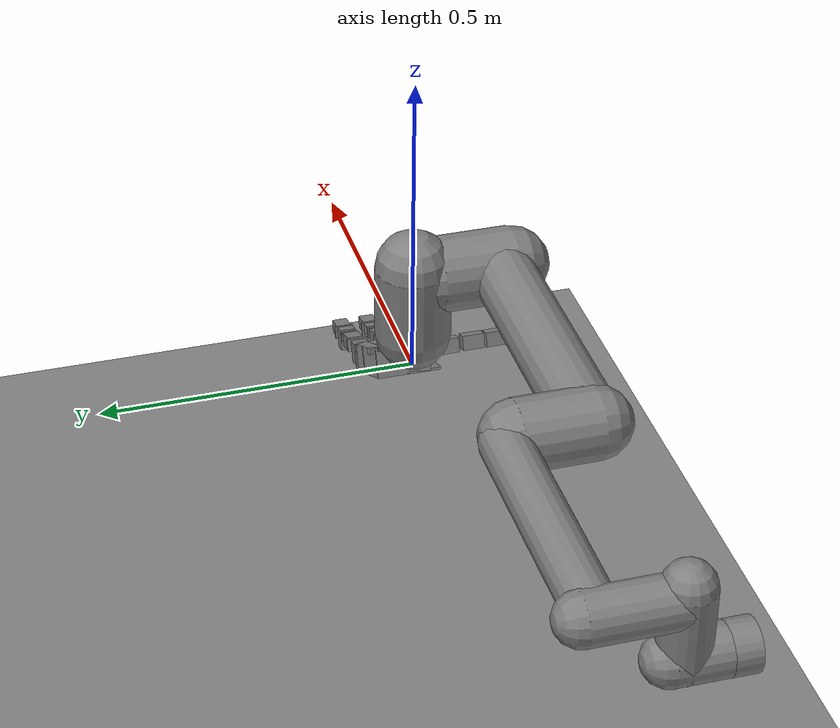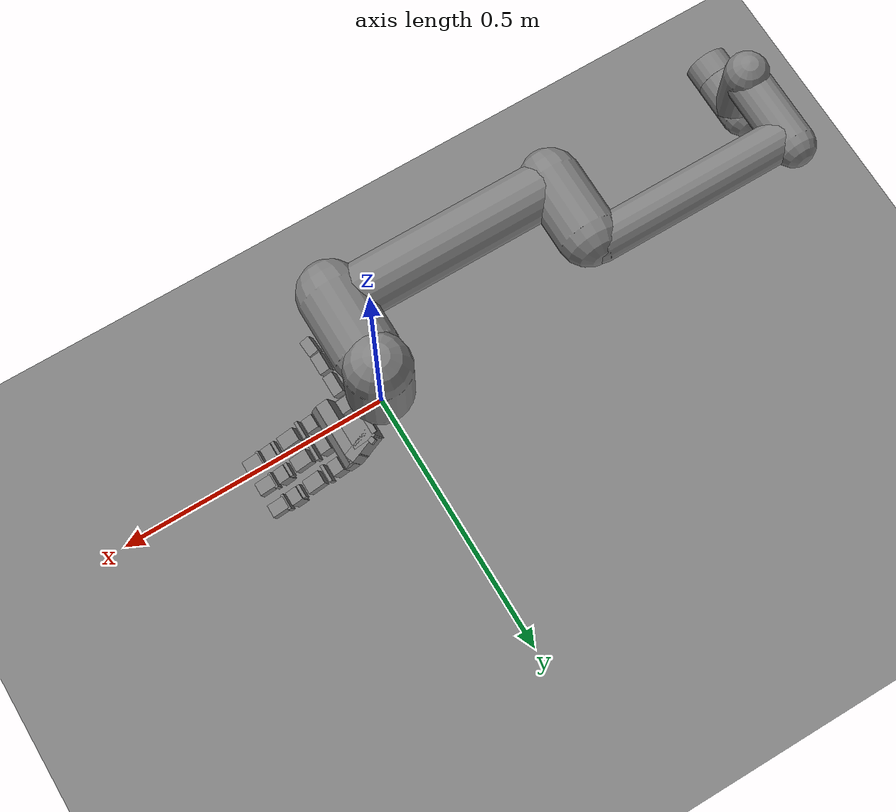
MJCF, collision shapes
<mujoco model="ur5e_leap_menagerie_scene">
  <!-- Include local UR5e wrapper that sets meshdir absolute to menagerie assets -->
  <include file="ur5e_local.xml"/>
  <!-- Reset meshdir so subsequent includes (LEAP) resolve their own relative paths correctly -->
  <compiler meshdir=""/>
  <include file="leap_rh_mjx.xml"/>

  <!-- Unify simulation options for the combined scene to improve stability -->
  <option timestep="0.004" integrator="implicitfast" iterations="10" ls_iterations="20"/>

  <visual>
    <global azimuth="120" elevation="-20"/>
  </visual>

  <worldbody>
    <!-- Optional: simple floor (non-colliding) and a camera -->
    <geom name="floor" type="plane" pos="0 0 -0.5" size="0 0 0.01" contype="0" conaffinity="0"/>
    <camera name="cam" pos="1.5 0.0 0.9" xyaxes="0.0 -1.0 0.0 0.4 0.0 0.9"/>
  </worldbody>

  <!-- Rigidly weld LEAP Hand base to UR5e wrist_3_link.
       The weld preserves the initial relative transform at load time. -->
  <equality>
    <weld body1="wrist_3_link" body2="leap_mount" solref="0.05 1" solimp="0.95 0.99 0.001" relpose="0 0.1 0 -1 1 0 0"/>
  </equality>
</mujoco>

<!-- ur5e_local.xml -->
<mujoco model="ur5e">
  <compiler angle="radian" autolimits="true"/>

  <option integrator="implicitfast"/>

  <default>
    <default class="ur5e">
      <material specular="0.5" shininess="0.25"/>
      <joint axis="0 1 0" range="-6.28319 6.28319" armature="0.1"/>
      <general gaintype="fixed" biastype="affine" ctrlrange="-6.2831 6.2831" gainprm="2000" biasprm="0 -2000 -400"
        forcerange="-150 150"/>
      <default class="size3">
        <default class="size3_limited">
          <joint range="-3.1415 3.1415"/>
          <general ctrlrange="-3.1415 3.1415"/>
        </default>
      </default>
      <default class="size1">
        <general gainprm="500" biasprm="0 -500 -100" forcerange="-28 28"/>
      </default>
      <default class="visual">
        <geom type="mesh" contype="0" conaffinity="0" group="2"/>
      </default>
      <default class="collision">
        <geom type="capsule" group="3"/>
        <default class="eef_collision">
          <geom type="cylinder"/>
        </default>
      </default>
      <site size="0.001" rgba="0.5 0.5 0.5 0.3" group="4"/>
    </default>
  </default>

  <asset>
    <material class="ur5e" name="black" rgba="0.033 0.033 0.033 1"/>
    <material class="ur5e" name="jointgray" rgba="0.278 0.278 0.278 1"/>
    <material class="ur5e" name="linkgray" rgba="0.82 0.82 0.82 1"/>
    <material class="ur5e" name="urblue" rgba="0.49 0.678 0.8 1"/>

    <mesh file="../../../../../mujoco_menagerie/universal_robots_ur5e/assets/base_0.obj"/>
    <mesh file="../../../../../mujoco_menagerie/universal_robots_ur5e/assets/base_1.obj"/>
    <mesh file="../../../../../mujoco_menagerie/universal_robots_ur5e/assets/shoulder_0.obj"/>
    <mesh file="../../../../../mujoco_menagerie/universal_robots_ur5e/assets/shoulder_1.obj"/>
    <mesh file="../../../../../mujoco_menagerie/universal_robots_ur5e/assets/shoulder_2.obj"/>
    <mesh file="../../../../../mujoco_menagerie/universal_robots_ur5e/assets/upperarm_0.obj"/>
    <mesh file="../../../../../mujoco_menagerie/universal_robots_ur5e/assets/upperarm_1.obj"/>
    <mesh file="../../../../../mujoco_menagerie/universal_robots_ur5e/assets/upperarm_2.obj"/>
    <mesh file="../../../../../mujoco_menagerie/universal_robots_ur5e/assets/upperarm_3.obj"/>
    <mesh file="../../../../../mujoco_menagerie/universal_robots_ur5e/assets/forearm_0.obj"/>
    <mesh file="../../../../../mujoco_menagerie/universal_robots_ur5e/assets/forearm_1.obj"/>
    <mesh file="../../../../../mujoco_menagerie/universal_robots_ur5e/assets/forearm_2.obj"/>
    <mesh file="../../../../../mujoco_menagerie/universal_robots_ur5e/assets/forearm_3.obj"/>
    <mesh file="../../../../../mujoco_menagerie/universal_robots_ur5e/assets/wrist1_0.obj"/>
    <mesh file="../../../../../mujoco_menagerie/universal_robots_ur5e/assets/wrist1_1.obj"/>
    <mesh file="../../../../../mujoco_menagerie/universal_robots_ur5e/assets/wrist1_2.obj"/>
    <mesh file="../../../../../mujoco_menagerie/universal_robots_ur5e/assets/wrist2_0.obj"/>
    <mesh file="../../../../../mujoco_menagerie/universal_robots_ur5e/assets/wrist2_1.obj"/>
    <mesh file="../../../../../mujoco_menagerie/universal_robots_ur5e/assets/wrist2_2.obj"/>
    <mesh file="../../../../../mujoco_menagerie/universal_robots_ur5e/assets/wrist3.obj"/>
  </asset>

  <worldbody>
    <light name="spotlight" mode="targetbodycom" target="wrist_2_link" pos="0 -1 2"/>
    <body name="base" quat="0 0 0 -1" childclass="ur5e">
      <inertial mass="4.0" pos="0 0 0" diaginertia="0.00443333156 0.00443333156 0.0072"/>
      <geom mesh="base_0" material="black" class="visual"/>
      <geom mesh="base_1" material="jointgray" class="visual"/>
      <body name="shoulder_link" pos="0 0 0.163">
        <inertial mass="3.7" pos="0 0 0" diaginertia="0.0102675 0.0102675 0.00666"/>
        <joint name="shoulder_pan_joint" class="size3" axis="0 0 1"/>
        <geom mesh="shoulder_0" material="urblue" class="visual"/>
        <geom mesh="shoulder_1" material="black" class="visual"/>
        <geom mesh="shoulder_2" material="jointgray" class="visual"/>
        <geom class="collision" size="0.06 0.06" pos="0 0 -0.04"/>
        <body name="upper_arm_link" pos="0 0.138 0" quat="1 0 1 0">
          <inertial mass="8.393" pos="0 0 0.2125" diaginertia="0.133886 0.133886 0.0151074"/>
          <joint name="shoulder_lift_joint" class="size3"/>
          <geom mesh="upperarm_0" material="linkgray" class="visual"/>
          <geom mesh="upperarm_1" material="black" class="visual"/>
          <geom mesh="upperarm_2" material="jointgray" class="visual"/>
          <geom mesh="upperarm_3" material="urblue" class="visual"/>
          <geom class="collision" pos="0 -0.04 0" quat="1 1 0 0" size="0.06 0.06"/>
          <geom class="collision" size="0.05 0.2" pos="0 0 0.2"/>
          <body name="forearm_link" pos="0 -0.131 0.425">
            <inertial mass="2.275" pos="0 0 0.196" diaginertia="0.0311796 0.0311796 0.004095"/>
            <joint name="elbow_joint" class="size3_limited"/>
            <geom mesh="forearm_0" material="urblue" class="visual"/>
            <geom mesh="forearm_1" material="linkgray" class="visual"/>
            <geom mesh="forearm_2" material="black" class="visual"/>
            <geom mesh="forearm_3" material="jointgray" class="visual"/>
            <geom class="collision" pos="0 0.08 0" quat="1 1 0 0" size="0.055 0.06"/>
            <geom class="collision" size="0.038 0.19" pos="0 0 0.2"/>
            <body name="wrist_1_link" pos="0 0 0.392" quat="1 0 1 0">
              <inertial mass="1.219" pos="0 0.127 0" diaginertia="0.0025599 0.0025599 0.0021942"/>
              <joint name="wrist_1_joint" class="size1"/>
              <geom mesh="wrist1_0" material="black" class="visual"/>
              <geom mesh="wrist1_1" material="urblue" class="visual"/>
              <geom mesh="wrist1_2" material="jointgray" class="visual"/>
              <geom class="collision" pos="0 0.05 0" quat="1 1 0 0" size="0.04 0.07"/>
              <body name="wrist_2_link" pos="0 0.127 0">
                <inertial mass="1.219" pos="0 0 0.1" diaginertia="0.0025599 0.0025599 0.0021942"/>
                <joint name="wrist_2_joint" axis="0 0 1" class="size1"/>
                <geom mesh="wrist2_0" material="black" class="visual"/>
                <geom mesh="wrist2_1" material="urblue" class="visual"/>
                <geom mesh="wrist2_2" material="jointgray" class="visual"/>
                <geom class="collision" size="0.04 0.06" pos="0 0 0.04"/>
                <geom class="collision" pos="0 0.02 0.1" quat="1 1 0 0" size="0.04 0.04"/>
                <body name="wrist_3_link" pos="0 0 0.1">
                  <inertial mass="0.1889" pos="0 0.0771683 0" quat="1 0 0 1"
                    diaginertia="0.000132134 9.90863e-05 9.90863e-05"/>
                  <joint name="wrist_3_joint" class="size1"/>
                  <geom material="linkgray" mesh="wrist3" class="visual"/>
                  <geom class="eef_collision" pos="0 0.08 0" quat="1 1 0 0" size="0.04 0.02"/>
                  <site name="attachment_site" pos="0 0.1 0" quat="-1 1 0 0"/>
                </body>
              </body>
            </body>
          </body>
        </body>
      </body>
    </body>
  </worldbody>

  <actuator>
    <!-- Replace high-gain general actuators with moderate-gain position controllers to reduce vibration -->
    <position name="shoulder_pan" joint="shoulder_pan_joint" kp="80" ctrlrange="-3.1415 3.1415" forcerange="-150 150"/>
    <position name="shoulder_lift" joint="shoulder_lift_joint" kp="80" ctrlrange="-3.1415 3.1415" forcerange="-150 150"/>
    <position name="elbow" joint="elbow_joint" kp="60" ctrlrange="-3.1415 3.1415" forcerange="-120 120"/>
    <position name="wrist_1" joint="wrist_1_joint" kp="40" ctrlrange="-3.1415 3.1415" forcerange="-60 60"/>
    <position name="wrist_2" joint="wrist_2_joint" kp="40" ctrlrange="-3.1415 3.1415" forcerange="-60 60"/>
    <position name="wrist_3" joint="wrist_3_joint" kp="30" ctrlrange="-3.1415 3.1415" forcerange="-40 40"/>
  </actuator>
</mujoco>

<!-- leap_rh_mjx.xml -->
<mujoco model="leap_rh">
  <compiler angle="radian" autolimits="true" meshdir=""/>

  <option timestep="0.01" integrator="Euler" iterations="5" ls_iterations="8">
    <flag eulerdamp="disable"/>
  </option>

  <custom>
    <numeric data="30" name="max_contact_points"/>
    <numeric data="12" name="max_geom_pairs"/>
  </custom>

  <asset>
    <material name="leap_black" rgba="0.2 0.2 0.2 1"/>
    <material name="leap_gray" rgba="0.5 0.5 0.5 1"/>
    <mesh name="leap_mount" file="../../../../../mujoco_playground/_src/manipulation/my_leap_hand/xmls/meshes/leap_mount.obj"/>

    <mesh name="palm" file="../../../../../mujoco_menagerie/leap_hand/assets/palm_right.obj"/>
    <mesh name="base" file="../../../../../mujoco_menagerie/leap_hand/assets/base.obj"/>
    <mesh name="proximal" file="../../../../../mujoco_menagerie/leap_hand/assets/proximal.obj"/>
    <mesh name="medial" file="../../../../../mujoco_menagerie/leap_hand/assets/medial.obj"/>
    <mesh name="distal" file="../../../../../mujoco_menagerie/leap_hand/assets/distal.obj"/>
    <mesh name="tip" file="../../../../../mujoco_menagerie/leap_hand/assets/tip.obj"/>
    <mesh name="thumb_base" file="../../../../../mujoco_menagerie/leap_hand/assets/thumb_base.obj"/>
    <mesh name="thumb_proximal" file="../../../../../mujoco_menagerie/leap_hand/assets/thumb_proximal.obj"/>
    <mesh name="thumb_distal" file="../../../../../mujoco_menagerie/leap_hand/assets/thumb_distal.obj"/>
    <mesh name="thumb_tip" file="../../../../../mujoco_menagerie/leap_hand/assets/thumb_tip.obj"/>
  </asset>

  <default>
    <default class="leap_rh">
      <geom group="3" friction="0.2" solref="0.02 1.5" solimp="0.9 0.99 0.001"/>
      <default class="leap_visual">
        <geom group="2" type="mesh" contype="0" conaffinity="0" density="0" material="leap_black"/>
      </default>
      <default class="tip">
        <geom size="0.01 0.012 0.016" pos="-0.0012969 -0.0335524 0.0145207" quat="0.703552 0.709596 -0.0292107 -0.0252203" type="box" friction="0.7 0.05 0.0002" rgba=".5 .5 .5 .3"/>
      </default>
      <default class="thumb_tip">
        <geom size="0.01 0.012 0.016" pos="-0.00127744 -0.0455619 -0.0144774" quat="0.708101 0.705072 -0.0294902 -0.024426" type="box" friction="0.7 0.05 0.0002" rgba=".5 .5 .5 .3"/>
      </default>

      <position kp="3.0" inheritrange="1"/>
      <!-- armature = rotor inertia * gear ratio^2 = 1.7 * 1e-8 * 288*288 = 0.00149376 -->
      <!-- max torque = 0.2196 = 600/1000*0.366 -->
      <!-- frictionloss = rough guess, small ish value -->
      <joint axis="0 0 -1" damping="0.2" armature="0.00149376" actuatorfrcrange="-0.2196 0.2196" frictionloss="0.02"/>

      <default class="mcp">
        <joint range="-0.314 2.23"/>
      </default>
      <default class="rot">
        <joint range="-1.047 1.047"/>
      </default>
      <default class="pip">
        <joint range="-0.506 1.885"/>
      </default>
      <default class="dip">
        <joint range="-0.366 2.042"/>
      </default>
      <default class="thumb_cmc">
        <joint range="-0.349 2.094"/>
      </default>
      <default class="thumb_axl">
        <joint range="-0.349 2.094"/>
      </default>
      <default class="thumb_mcp">
        <joint range="-0.47 2.443"/>
      </default>
      <default class="thumb_ipl">
        <joint range="-1.34 1.88"/>
      </default>

    </default>
  </default>

  <contact>
    <!-- filter the palm from all other finger bodies except the tips -->
    <exclude body1="palm" body2="if_bs"/>
    <exclude body1="palm" body2="mf_bs"/>
    <exclude body1="palm" body2="rf_bs"/>
    <exclude body1="palm" body2="th_mp"/>

    <exclude body1="palm" body2="if_px"/>
    <exclude body1="palm" body2="mf_px"/>
    <exclude body1="palm" body2="rf_px"/>
    <exclude body1="palm" body2="th_bs"/>

    <exclude body1="palm" body2="if_md"/>
    <exclude body1="palm" body2="mf_md"/>
    <exclude body1="palm" body2="rf_md"/>
    <exclude body1="palm" body2="th_px"/>

    <!-- filter the mount from all finger bodies except the tips -->
    <exclude body1="leap_mount" body2="if_bs"/>
    <exclude body1="leap_mount" body2="mf_bs"/>
    <exclude body1="leap_mount" body2="rf_bs"/>
    <exclude body1="leap_mount" body2="th_mp"/>

    <exclude body1="leap_mount" body2="if_px"/>
    <exclude body1="leap_mount" body2="mf_px"/>
    <exclude body1="leap_mount" body2="rf_px"/>
    <exclude body1="leap_mount" body2="th_bs"/>

    <exclude body1="leap_mount" body2="if_md"/>
    <exclude body1="leap_mount" body2="mf_md"/>
    <exclude body1="leap_mount" body2="rf_md"/>
    <exclude body1="leap_mount" body2="th_px"/>

    <!-- none of the base fingertip geoms can touch each other -->
    <exclude body1="if_bs" body2="mf_bs"/>
    <exclude body1="if_bs" body2="rf_bs"/>
    <exclude body1="mf_bs" body2="rf_bs"/>

    <exclude body1="th_mp" body2="if_bs"/>
    <exclude body1="th_mp" body2="mf_bs"/>
    <exclude body1="th_mp" body2="rf_bs"/>
  </contact>

  <worldbody>
    <light name="leap_spotlight" mode="targetbodycom" target="palm" pos="3 0 4"/>
    <body name="leap_mount" pos="0 0 0" quat="1 0 0 0" childclass="leap_rh">
       <geom name="leap_mount_visual" pos="0 0 0" quat="1 0 0 0" class="leap_visual" mesh="leap_mount"/>
      <geom name="leap_mount_collision_0" size="0.002 0.025 0.005" pos="0.0405 0.02 0.009"
        quat="0.57346234 0 0.81923192 0" type="box"/>
      <geom name="leap_mount_collision_1" size="0.005 0.005 0.005" pos="0.05 0.053 0.002"
        quat="0.4987168 0.64994038 -0.34910175 0.45495826" type="box"/>
      <site name="grasp_site" pos="0.11 0.0 0.03" group="4"/>
      <body name="palm" pos="0.124 -0.0305 -0.06045" quat="0 1 0 -0.175">
        <inertial pos="-0.049542 -0.042914 -0.010227" quat="0.565586 0.427629 -0.574956 0.408254" mass="0.237"
          diaginertia="0.000407345 0.000304759 0.000180736"/>
         <geom name="palm_visual" pos="-0.02 0.02575 -0.0347" quat="1 0 0 0" class="leap_visual" mesh="palm"/>
        <geom name="palm_collision_1" size="0.011 0.013 0.017" pos="-0.009 0.008 -0.011" type="box"/>
        <geom name="palm_collision_2" size="0.011 0.013 0.017" pos="-0.009 -0.037 -0.011" type="box"/>
        <geom name="palm_collision_3" size="0.011 0.013 0.017" pos="-0.009 -0.082 -0.011" type="box"/>
        <geom name="palm_collision_4" size="0.029 0.01 0.023" pos="-0.066 -0.078 -0.0115" quat="0.989016 0 0 -0.147806" type="box"/>
        <geom name="palm_collision_5" size="0.01 0.06 0.015" pos="-0.03 -0.035 -0.003" type="box"/>
        <geom name="palm_collision_6" size="0.005 0.06 0.01" pos="-0.032 -0.035 -0.024" quat="0.923956 0 0.382499 0" type="box"/>
        <geom name="palm_collision_7" size="0.012 0.058 0.023" pos="-0.048 -0.033 -0.0115" type="box"/>
        <geom name="palm_collision_8" size="0.022 0.026 0.023" pos="-0.078 -0.053 -0.0115" type="box"/>
        <geom name="palm_collision_9" size="0.002 0.018 0.017" pos="-0.098 -0.009 -0.006" type="box"/>
        <geom name="palm_collision_10" size="0.022 0.028 0.002" pos="-0.078 -0.003 0.01" type="box"/>
        <body name="if_bs" pos="-0.007 0.023 -0.0187" quat="0.5 0.5 0.5 -0.5">
          <inertial pos="-0.022516 0.033882 0.016359" quat="0.388092 0.677951 -0.247713 0.573067" mass="0.044"
            diaginertia="1.74972e-05 1.61504e-05 7.21342e-06"/>
          <joint name="if_mcp" class="mcp"/>
          <geom name="if_bs_visual" pos="0.0084 0.0077 0.01465" quat="1 0 0 0" class="leap_visual" mesh="base"/>
          <geom name="if_bs_collision_1" size="0.01 0.003 0.017" pos="0 0.018 0.0147" type="box"/>
          <body name="if_px" pos="-0.0122 0.0381 0.0145" quat="0.500003 -0.5 -0.499997 0.5">
            <inertial pos="0.0075 -0.0002 -0.011" quat="0 0.707107 0 0.707107" mass="0.032"
              diaginertia="4.8853e-06 4.3733e-06 3.0933e-06"/>
            <joint name="if_rot" class="rot"/>
             <geom name="if_px_visual" pos="0.0096 0.0002 0.0007" quat="0.500003 -0.5 -0.5 -0.499997" class="leap_visual"
              mesh="proximal"/>
            <geom name="if_px_collision" size="0.017 0.013 0.011" pos="0.0075 -0.0002 -0.011" type="box"/>

            <body name="if_md" pos="0.015 0.0143 -0.013" quat="0.500003 0.5 -0.5 0.499997">
              <inertial pos="0.0054215 -0.029148 0.015" quat="0.687228 0.687228 0.166487 0.166487" mass="0.037"
                diaginertia="8.28004e-06 8.1598e-06 5.39516e-06"/>
              <joint name="if_pip" class="pip"/>
              <geom name="if_md_visual" pos="0.0211 -0.0084 0.0097" quat="2.67949e-08 -1 0 0" class="leap_visual"
                mesh="medial"/>
              <geom name="if_md_collision_1" size="0.008 0.003 0.013" pos="0 -0.02 0.015" type="box"/>
              <geom name="if_md_collision_5" size="0.017 0.011 0.013" pos="0.0075 -0.035 0.015" type="box"/>
              <body name="if_ds" pos="0 -0.0361 0.0002">
                <inertial pos="-0.0008794 -0.027019 0.014594" quat="0.702905 0.710643 -0.0212937 -0.0214203"
                  mass="0.016" diaginertia="3.71863e-06 3.02396e-06 1.6518e-06"/>
                <joint name="if_dip" class="dip"/>
                 <geom name="if_ds_visual" pos="0.0132 -0.0061 0.0144" quat="2.67949e-08 1 0 0" class="leap_visual"
                  mesh="distal"/>
                <geom name="if_ds_collision_1" size="0.01 0.003 0.015" pos="0 -0.017 0.015" type="box"/>
                <geom name="if_tip" class="tip"/>
                 <geom type="mesh" mesh="tip" class="leap_visual" material="leap_gray"/>
                <site name="if_tip" pos="0 -0.05 0.015" group="4"/>
              </body>
            </body>
          </body>
        </body>
        <body name="mf_bs" pos="-0.0071 -0.0224 -0.0187" quat="0.500003 0.5 0.5 -0.499997">
          <inertial pos="-0.022516 0.033882 0.016359" quat="0.388092 0.677951 -0.247713 0.573067" mass="0.044"
            diaginertia="1.74972e-05 1.61504e-05 7.21342e-06"/>
          <joint name="mf_mcp" class="mcp"/>
          <geom name="mf_bs_visual" pos="0.0084 0.0077 0.01465" quat="1 0 0 0" class="leap_visual" mesh="base"/>
          <geom name="mf_bs_collision_1" size="0.01 0.003 0.017" pos="0 0.018 0.0147" type="box"/>
          <body name="mf_px" pos="-0.0122 0.0381 0.0145" quat="0.500003 -0.5 -0.499997 0.5">
            <inertial pos="0.0075 -0.0002 -0.011" quat="0 0.707107 0 0.707107" mass="0.032"
              diaginertia="4.8853e-06 4.3733e-06 3.0933e-06"/>
            <joint name="mf_rot" class="rot"/>
             <geom name="mf_px_visual" pos="0.0096 0.0003 0.0007" quat="0.500003 -0.5 -0.5 -0.499997" class="leap_visual"
              mesh="proximal"/>
            <geom name="mf_px_collision" size="0.017 0.013 0.011" pos="0.0075 -0.0002 -0.011" type="box"/>
            <body name="mf_md" pos="0.015 0.0143 -0.013" quat="0.500003 0.5 -0.5 0.499997">
              <inertial pos="0.0054215 -0.029148 0.015" quat="0.687228 0.687228 0.166487 0.166487" mass="0.037"
                diaginertia="8.28004e-06 8.1598e-06 5.39516e-06"/>
              <joint name="mf_pip" class="pip"/>
              <geom name="mf_md_visual" pos="0.0211 -0.0084 0.0097" quat="1.32679e-06 -1 0 0" class="leap_visual"
                mesh="medial"/>
              <geom name="mf_md_collision_1" size="0.008 0.003 0.013" pos="0 -0.02 0.015" type="box"/>
              <geom name="mf_md_collision_5" size="0.017 0.011 0.013" pos="0.0075 -0.035 0.015" type="box"/>
              <body name="mf_ds" pos="0 -0.0361 0.0002">
                <inertial pos="-0.0008794 -0.027019 0.014594" quat="0.702905 0.710643 -0.0212937 -0.0214203"
                  mass="0.016" diaginertia="3.71863e-06 3.02396e-06 1.6518e-06"/>
                <joint name="mf_dip" class="dip"/>
                 <geom name="mf_ds_visual" pos="0.0132 -0.0061 0.0145" quat="1.32679e-06 1 0 0" class="leap_visual"
                  mesh="distal"/>
                <geom name="mf_ds_collision_1" size="0.01 0.003 0.015" pos="0 -0.017 0.015" type="box"/>
                <geom name="mf_tip" class="tip"/>
                 <geom type="mesh" mesh="tip" class="leap_visual" material="leap_gray"/>
                <site name="mf_tip" pos="0 -0.05 0.015" group="4"/>
              </body>
            </body>
          </body>
        </body>
        <body name="rf_bs" pos="-0.00709 -0.0678 -0.0187" quat="0.500003 0.5 0.5 -0.499997">
          <inertial pos="-0.022516 0.033882 0.016359" quat="0.388092 0.677951 -0.247713 0.573067" mass="0.044"
            diaginertia="1.74972e-05 1.61504e-05 7.21342e-06"/>
          <joint name="rf_mcp" class="mcp"/>
          <geom name="rf_bs_visual" pos="0.0084 0.0077 0.01465" quat="1 0 0 0" class="leap_visual" mesh="base"/>
          <geom name="rf_bs_collision_1" size="0.01 0.003 0.017" pos="0 0.018 0.0147" type="box"/>
          <body name="rf_px" pos="-0.0122 0.0381 0.0145" quat="0.500003 -0.5 -0.499997 0.5">
            <inertial pos="0.0075 -0.0002 -0.011" quat="0 0.707107 0 0.707107" mass="0.032"
              diaginertia="4.8853e-06 4.3733e-06 3.0933e-06"/>
            <joint name="rf_rot" class="rot"/>
             <geom name="rf_px_visual" pos="0.0096 0.0003 0.0007" quat="0.500003 -0.5 -0.5 -0.499997" class="leap_visual"
              mesh="proximal"/>
            <geom name="rf_px_collision" size="0.017 0.013 0.011" pos="0.0075 -0.0002 -0.011" type="box"/>
            <body name="rf_md" pos="0.015 0.0143 -0.013" quat="0.500003 0.5 -0.5 0.499997">
              <inertial pos="0.0054215 -0.029148 0.015" quat="0.687228 0.687228 0.166487 0.166487" mass="0.037"
                diaginertia="8.28004e-06 8.1598e-06 5.39516e-06"/>
              <joint name="rf_pip" class="pip"/>
              <geom name="rf_md_visual" pos="0.0211 -0.0084 0.0097" quat="0 -1 0 0" class="leap_visual" mesh="medial"/>
              <geom name="rf_md_collision_1" size="0.008 0.003 0.013" pos="0 -0.02 0.015" type="box"/>
              <geom name="rf_md_collision_5" size="0.017 0.011 0.013" pos="0.0075 -0.035 0.015" type="box"/>
              <body name="rf_ds" pos="0 -0.03609 0.0002">
                <inertial pos="-0.0008794 -0.027019 0.014594" quat="0.702905 0.710643 -0.0212937 -0.0214203"
                  mass="0.016" diaginertia="3.71863e-06 3.02396e-06 1.6518e-06"/>
                <joint name="rf_dip" class="dip"/>
                 <geom name="rf_ds_visual" pos="0.0132 -0.0061 0.0145" quat="0 1 0 0" class="leap_visual" mesh="distal"/>
                <geom name="rf_ds_collision_1" size="0.01 0.003 0.015" pos="0 -0.017 0.015" type="box"/>
                <geom name="rf_tip" class="tip"/>
                 <geom type="mesh" mesh="tip" class="leap_visual" material="leap_gray"/>
                <site name="rf_tip" pos="0 -0.05 0.015" group="4"/>
              </body>
            </body>
          </body>
        </body>
        <body name="th_mp" pos="-0.0693 -0.0012 -0.0216" quat="0.707109 0 0.707105 0">
          <inertial pos="0.0075 -0.0002 -0.011" quat="0 0.707107 0 0.707107" mass="0.032"
            diaginertia="4.8853e-06 4.3733e-06 3.0933e-06"/>
          <joint name="th_cmc" class="thumb_cmc"/>
          <geom name="th_mp_visual" pos="-0.0053 0.0003 0.00078" quat="0.500003 -0.5 -0.5 -0.499997" class="leap_visual"
            mesh="proximal"/>
          <geom name="th_mp_collision" size="0.017 0.013 0.011" pos="-0.0075 -0.0002 -0.011" type="box"/>
          <body name="th_bs" pos="0 0.0143 -0.013" quat="0.500003 0.5 -0.5 0.499997">
            <inertial pos="0 0 -0.0070806" quat="0.707107 0.707107 0 0" mass="0.003"
              diaginertia="6.1932e-07 5.351e-07 2.1516e-07"/>
            <joint name="th_axl" class="thumb_axl"/>
            <geom name="th_bs_collision_1" pos="0.01196 0 -0.0158" quat="0.707109 0.707105 0 0" class="leap_visual" mesh="thumb_base"/>
            <body name="th_px" pos="0 0.0145 -0.017" quat="0.707109 -0.707105 0 0">
              <inertial pos="-0.0020593 0.015912 -0.013733" quat="0.698518 0.697382 -0.104933 0.121324" mass="0.038"
                diaginertia="9.87104e-06 9.32653e-06 4.36203e-06"/>
              <joint name="th_mcp" class="thumb_mcp"/>
              <geom name="th_px_visual" pos="0.0439 0.0579 -0.0086" quat="1 0 0 0" class="leap_visual" mesh="thumb_proximal"/>
              <geom name="th_px_collision_1" size="0.01 0.02 0.012" pos="0 0.0105 -0.014" type="box"/>
              <body name="th_ds" pos="0 0.0466 0.0002" quat="1.32679e-06 0 0 1">
                <inertial pos="0.00096191 -0.024203 -0.014419" quat="0.35287 0.311272 -0.632839 0.614904" mass="0.049"
                  diaginertia="2.08591e-05 2.0402e-05 4.71335e-06"/>
                <joint name="th_ipl" class="thumb_ipl"/>
                <geom name="th_ds_visual" pos="0.0625 0.0784 0.0489" quat="1 0 0 0" class="leap_visual" mesh="thumb_distal"/>
                <geom name="th_ds_collision_1" size="0.01 0.018 0.012" pos="0 -0.0085 -0.015" type="box"/>
                <geom name="th_tip" class="thumb_tip"/>
                <site name="th_tip" pos="0 -0.06 -0.015" group="4"/>
                <geom type="mesh" mesh="thumb_tip" class="leap_visual" material="leap_gray"/>
              </body>
            </body>
          </body>
        </body>
      </body>
    </body>
  </worldbody>

  <actuator>
    <position name="if_mcp_act" joint="if_mcp" class="mcp"/>
    <position name="if_rot_act" joint="if_rot" class="rot"/>
    <position name="if_pip_act" joint="if_pip" class="pip"/>
    <position name="if_dip_act" joint="if_dip" class="dip"/>
    <position name="mf_mcp_act" joint="mf_mcp" class="mcp"/>
    <position name="mf_rot_act" joint="mf_rot" class="rot"/>
    <position name="mf_pip_act" joint="mf_pip" class="pip"/>
    <position name="mf_dip_act" joint="mf_dip" class="dip"/>
    <position name="rf_mcp_act" joint="rf_mcp" class="mcp"/>
    <position name="rf_rot_act" joint="rf_rot" class="rot"/>
    <position name="rf_pip_act" joint="rf_pip" class="pip"/>
    <position name="rf_dip_act" joint="rf_dip" class="dip"/>
    <position name="th_cmc_act" joint="th_cmc" class="thumb_cmc"/>
    <position name="th_axl_act" joint="th_axl" class="thumb_axl"/>
    <position name="th_mcp_act" joint="th_mcp" class="thumb_mcp"/>
    <position name="th_ipl_act" joint="th_ipl" class="thumb_ipl"/>
  </actuator>
</mujoco>
